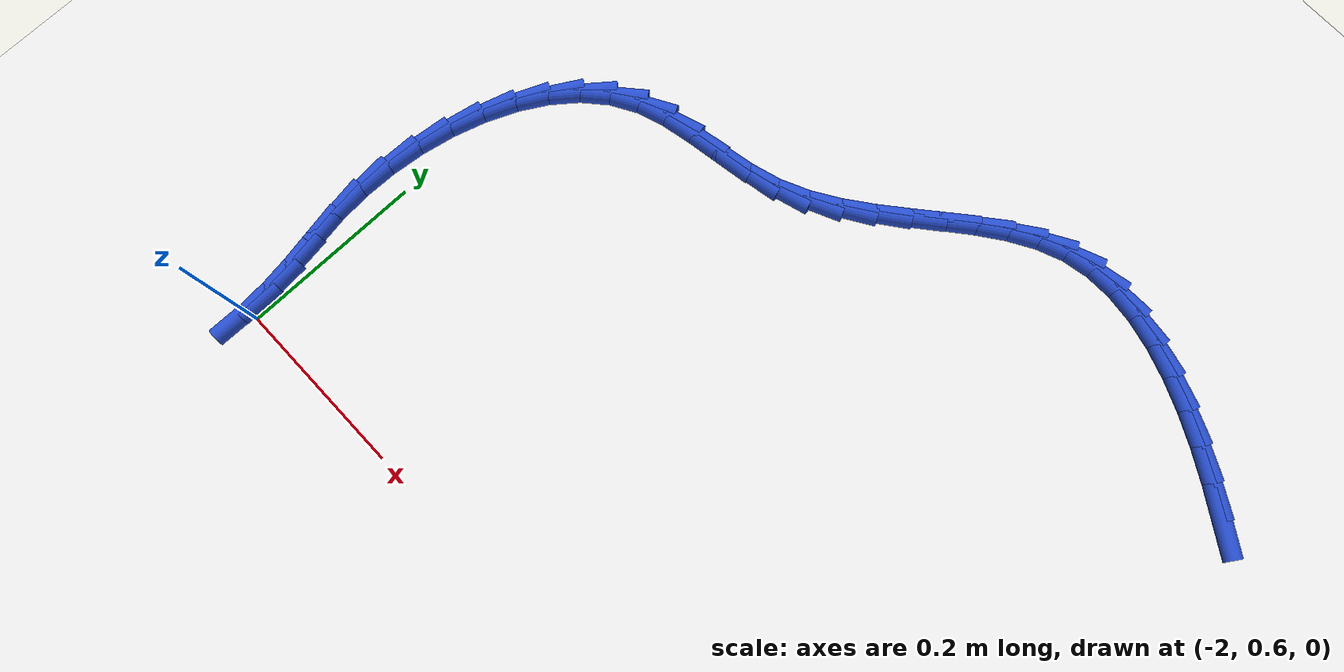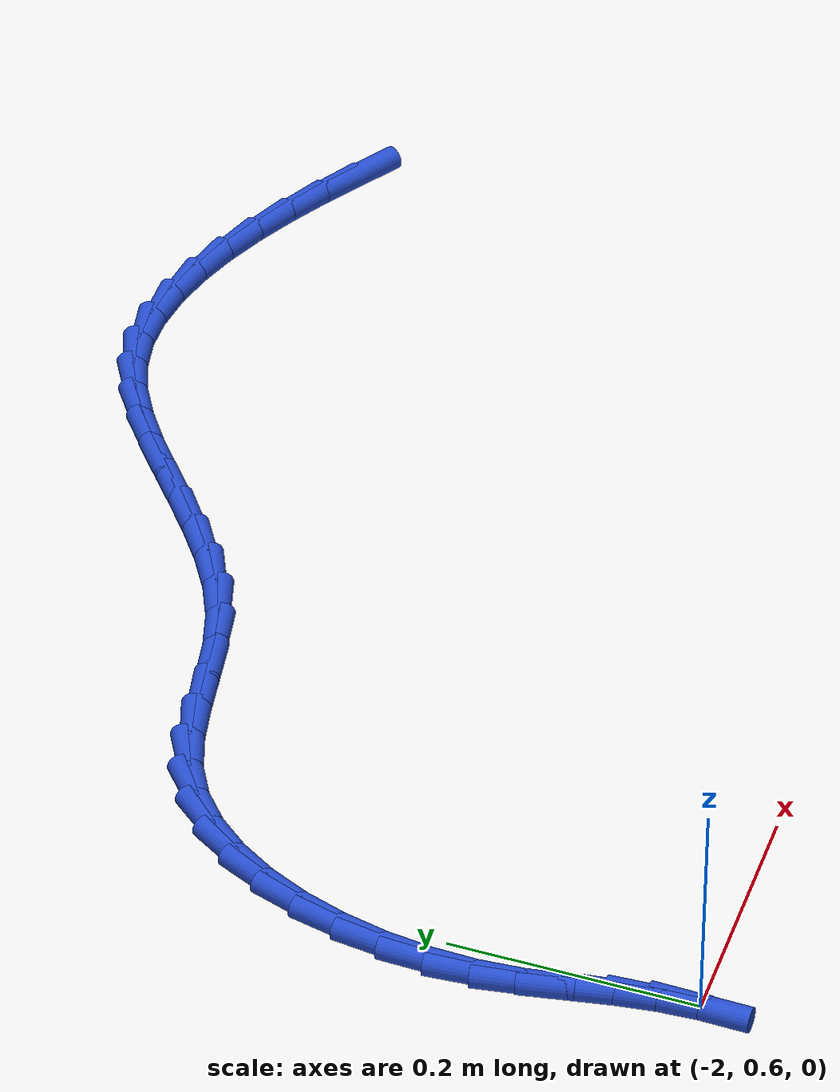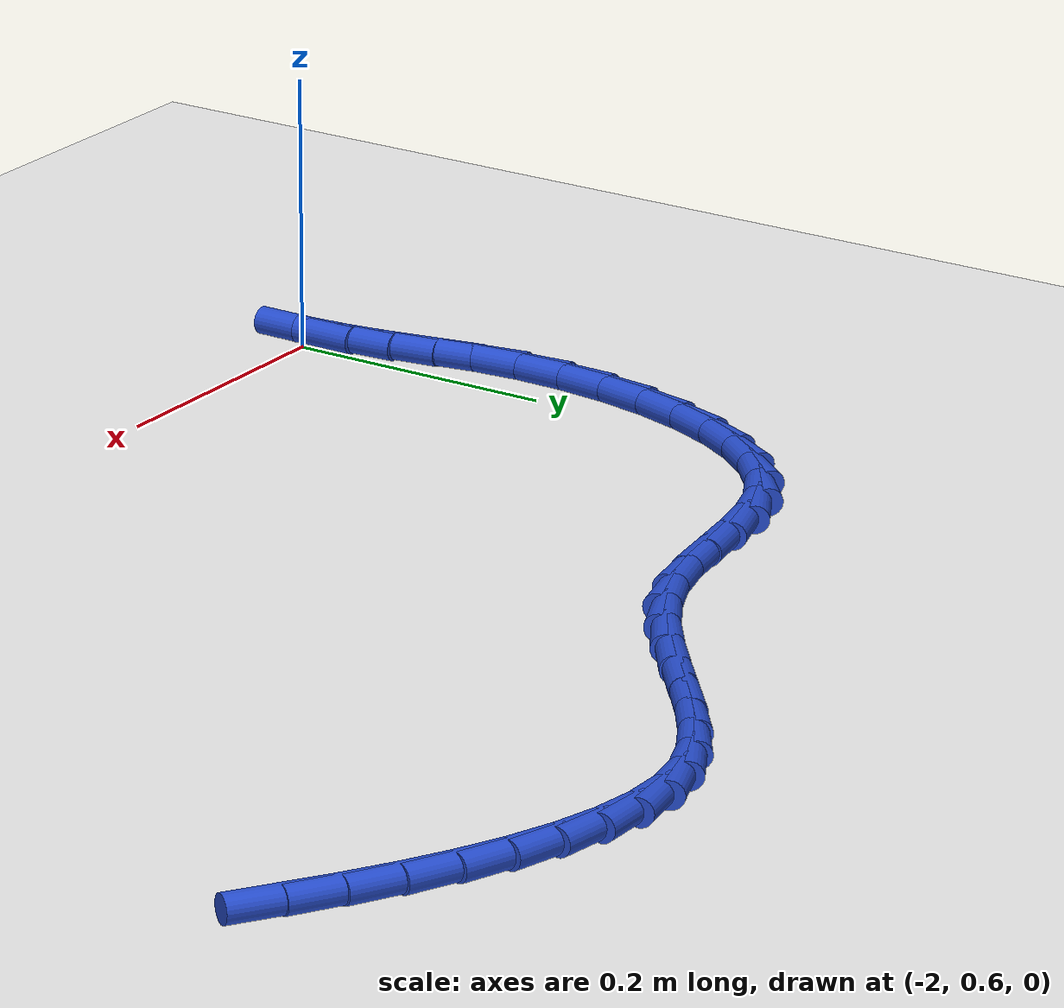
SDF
<sdf version="1.6">
 <world name="default">
  <model name="ground_plane">
   <static>1</static>
   <link name="link">
    <collision name="collision">
     <geometry><plane><normal>0 0 1</normal><size>100 100</size></plane></geometry>
     <surface><friction><ode><mu>100</mu><mu2>50</mu2></ode></friction></surface>
    </collision>
    <visual name="visual">
     <cast_shadows>0</cast_shadows>
     <geometry><plane><normal>0 0 1</normal><size>100 100</size></plane></geometry>
     <material>
      <script><uri>file://media/materials/scripts/gazebo.material</uri><name>Gazebo/WhiteGlow</name></script>
     </material>
    </visual>
   </link>
  </model>
  <model name="line">
   <link name="link_54">
    <pose>-1.176917898651941 1.1627627117914263 0.01 0 1.57 -0.5780427387369828</pose>
    <collision name="collision">
     <geometry><cylinder><radius>0.01</radius><length>0.08</length></cylinder></geometry>
    </collision>
    <visual name="visual">
     <material>
      <script><name>Gazebo/Blue</name><uri>file://media/materials/scripts/gazebo.material</uri></script>
     </material>
     <geometry><cylinder><radius>0.01</radius><length>0.08</length></cylinder></geometry>
    </visual>
   </link>
   <link name="link_55">
    <pose>-1.2086422637118477 1.1834588824106278 0.01 0 1.57 -0.5366835123935262</pose>
    <collision name="collision">
     <geometry><cylinder><radius>0.01</radius><length>0.08</length></cylinder></geometry>
    </collision>
    <visual name="visual">
     <material>
      <script><name>Gazebo/Blue</name><uri>file://media/materials/scripts/gazebo.material</uri></script>
     </material>
     <geometry><cylinder><radius>0.01</radius><length>0.08</length></cylinder></geometry>
    </visual>
   </link>
   <link name="link_56">
    <pose>-1.241278121779455 1.2028749464035091 0.01 0 1.57 -0.4856228797664288</pose>
    <collision name="collision">
     <geometry><cylinder><radius>0.01</radius><length>0.08</length></cylinder></geometry>
    </collision>
    <visual name="visual">
     <material>
      <script><name>Gazebo/Blue</name><uri>file://media/materials/scripts/gazebo.material</uri></script>
     </material>
     <geometry><cylinder><radius>0.01</radius><length>0.08</length></cylinder></geometry>
    </visual>
   </link>
   <link name="link_57">
    <pose>-1.2745295684713251 1.2204243544820943 0.01 0 1.57 -0.4225862140601892</pose>
    <collision name="collision">
     <geometry><cylinder><radius>0.01</radius><length>0.08</length></cylinder></geometry>
    </collision>
    <visual name="visual">
     <material>
      <script><name>Gazebo/Blue</name><uri>file://media/materials/scripts/gazebo.material</uri></script>
     </material>
     <geometry><cylinder><radius>0.01</radius><length>0.08</length></cylinder></geometry>
    </visual>
   </link>
   <link name="link_58">
    <pose>-1.3081006994040179 1.235520557358408 0.01 0 1.57 -0.3445612678087705</pose>
    <collision name="collision">
     <geometry><cylinder><radius>0.01</radius><length>0.08</length></cylinder></geometry>
    </collision>
    <visual name="visual">
     <material>
      <script><name>Gazebo/Blue</name><uri>file://media/materials/scripts/gazebo.material</uri></script>
     </material>
     <geometry><cylinder><radius>0.01</radius><length>0.08</length></cylinder></geometry>
    </visual>
   </link>
   <link name="link_59">
    <pose>-1.3416956101940962 1.2475770057444757 0.01 0 1.57 -0.24778551821294031</pose>
    <collision name="collision">
     <geometry><cylinder><radius>0.01</radius><length>0.08</length></cylinder></geometry>
    </collision>
    <visual name="visual">
     <material>
      <script><name>Gazebo/Blue</name><uri>file://media/materials/scripts/gazebo.material</uri></script>
     </material>
     <geometry><cylinder><radius>0.01</radius><length>0.08</length></cylinder></geometry>
    </visual>
   </link>
   <link name="link_60">
    <pose>-1.3750183964581197 1.2560071503523214 0.01 0 1.57 -0.12804908183256347</pose>
    <collision name="collision">
     <geometry><cylinder><radius>0.01</radius><length>0.08</length></cylinder></geometry>
    </collision>
    <visual name="visual">
     <material>
      <script><name>Gazebo/Blue</name><uri>file://media/materials/scripts/gazebo.material</uri></script>
     </material>
     <geometry><cylinder><radius>0.01</radius><length>0.08</length></cylinder></geometry>
    </visual>
   </link>
   <link name="link_61">
    <pose>-1.407773153812651 1.26022444189397 0.01 0 1.57 0.01825121153832464</pose>
    <collision name="collision">
     <geometry><cylinder><radius>0.01</radius><length>0.08</length></cylinder></geometry>
    </collision>
    <visual name="visual">
     <material>
      <script><name>Gazebo/Blue</name><uri>file://media/materials/scripts/gazebo.material</uri></script>
     </material>
     <geometry><cylinder><radius>0.01</radius><length>0.08</length></cylinder></geometry>
    </visual>
   </link>
   <link name="link_62">
    <pose>-1.4396639778742502 1.2596423310814466 0.01 0 1.57 0.1918146178247075</pose>
    <collision name="collision">
     <geometry><cylinder><radius>0.01</radius><length>0.08</length></cylinder></geometry>
    </collision>
    <visual name="visual">
     <material>
      <script><name>Gazebo/Blue</name><uri>file://media/materials/scripts/gazebo.material</uri></script>
     </material>
     <geometry><cylinder><radius>0.01</radius><length>0.08</length></cylinder></geometry>
    </visual>
   </link>
   <link name="link_63">
    <pose>-1.4703949768707225 1.2536743025000623 0.01 0 1.57 0.3755300517845556</pose>
    <collision name="collision">
     <geometry><cylinder><radius>0.01</radius><length>0.08</length></cylinder></geometry>
    </collision>
    <visual name="visual">
     <material>
      <script><name>Gazebo/Blue</name><uri>file://media/materials/scripts/gazebo.material</uri></script>
     </material>
     <geometry><cylinder><radius>0.01</radius><length>0.08</length></cylinder></geometry>
    </visual>
   </link>
   <link name="link_64">
    <pose>-1.4997997984988494 1.242081778474179 0.01 0 1.57 0.5203321534626906</pose>
    <collision name="collision">
     <geometry><cylinder><radius>0.01</radius><length>0.08</length></cylinder></geometry>
    </collision>
    <visual name="visual">
     <material>
      <script><name>Gazebo/Blue</name><uri>file://media/materials/scripts/gazebo.material</uri></script>
     </material>
     <geometry><cylinder><radius>0.01</radius><length>0.08</length></cylinder></geometry>
    </visual>
   </link>
   <link name="link_65">
    <pose>-1.5281606293536816 1.2258309385451978 0.01 0 1.57 0.6178428762638112</pose>
    <collision name="collision">
     <geometry><cylinder><radius>0.01</radius><length>0.08</length></cylinder></geometry>
    </collision>
    <visual name="visual">
     <material>
      <script><name>Gazebo/Blue</name><uri>file://media/materials/scripts/gazebo.material</uri></script>
     </material>
     <geometry><cylinder><radius>0.01</radius><length>0.08</length></cylinder></geometry>
    </visual>
   </link>
   <link name="link_66">
    <pose>-1.5558566707289896 1.2061485397850091 0.01 0 1.57 0.6738246059617238</pose>
    <collision name="collision">
     <geometry><cylinder><radius>0.01</radius><length>0.08</length></cylinder></geometry>
    </collision>
    <visual name="visual">
     <material>
      <script><name>Gazebo/Blue</name><uri>file://media/materials/scripts/gazebo.material</uri></script>
     </material>
     <geometry><cylinder><radius>0.01</radius><length>0.08</length></cylinder></geometry>
    </visual>
   </link>
   <link name="link_67">
    <pose>-1.5832671239185419 1.1842613392655037 0.01 0 1.57 0.6935610456259537</pose>
    <collision name="collision">
     <geometry><cylinder><radius>0.01</radius><length>0.08</length></cylinder></geometry>
    </collision>
    <visual name="visual">
     <material>
      <script><name>Gazebo/Blue</name><uri>file://media/materials/scripts/gazebo.material</uri></script>
     </material>
     <geometry><cylinder><radius>0.01</radius><length>0.08</length></cylinder></geometry>
    </visual>
   </link>
   <link name="link_68">
    <pose>-1.6107711902161093 1.1613960940585706 0.01 0 1.57 0.679842432964973</pose>
    <collision name="collision">
     <geometry><cylinder><radius>0.01</radius><length>0.08</length></cylinder></geometry>
    </collision>
    <visual name="visual">
     <material>
      <script><name>Gazebo/Blue</name><uri>file://media/materials/scripts/gazebo.material</uri></script>
     </material>
     <geometry><cylinder><radius>0.01</radius><length>0.08</length></cylinder></geometry>
    </visual>
   </link>
   <link name="link_69">
    <pose>-1.63874807091546 1.138779561236101 0.01 0 1.57 0.6327459629798103</pose>
    <collision name="collision">
     <geometry><cylinder><radius>0.01</radius><length>0.08</length></cylinder></geometry>
    </collision>
    <visual name="visual">
     <material>
      <script><name>Gazebo/Blue</name><uri>file://media/materials/scripts/gazebo.material</uri></script>
     </material>
     <geometry><cylinder><radius>0.01</radius><length>0.08</length></cylinder></geometry>
    </visual>
   </link>
   <link name="link_70">
    <pose>-1.6675769673103653 1.1176384978699843 0.01 0 1.57 0.5502133348714137</pose>
    <collision name="collision">
     <geometry><cylinder><radius>0.01</radius><length>0.08</length></cylinder></geometry>
    </collision>
    <visual name="visual">
     <material>
      <script><name>Gazebo/Blue</name><uri>file://media/materials/scripts/gazebo.material</uri></script>
     </material>
     <geometry><cylinder><radius>0.01</radius><length>0.08</length></cylinder></geometry>
    </visual>
   </link>
   <link name="link_71">
    <pose>-1.6976370806945933 1.0991996610321113 0.01 0 1.57 0.42961074005122696</pose>
    <collision name="collision">
     <geometry><cylinder><radius>0.01</radius><length>0.08</length></cylinder></geometry>
    </collision>
    <visual name="visual">
     <material>
      <script><name>Gazebo/Blue</name><uri>file://media/materials/scripts/gazebo.material</uri></script>
     </material>
     <geometry><cylinder><radius>0.01</radius><length>0.08</length></cylinder></geometry>
    </visual>
   </link>
   <link name="link_72">
    <pose>-1.7293076123619144 1.0846898077943719 0.01 0 1.57 0.28526186811522847</pose>
    <collision name="collision">
     <geometry><cylinder><radius>0.01</radius><length>0.08</length></cylinder></geometry>
    </collision>
    <visual name="visual">
     <material>
      <script><name>Gazebo/Blue</name><uri>file://media/materials/scripts/gazebo.material</uri></script>
     </material>
     <geometry><cylinder><radius>0.01</radius><length>0.08</length></cylinder></geometry>
    </visual>
   </link>
   <link name="link_73">
    <pose>-1.7627792682887082 1.0748739109733982 0.01 0 1.57 0.1901970805729761</pose>
    <collision name="collision">
     <geometry><cylinder><radius>0.01</radius><length>0.08</length></cylinder></geometry>
    </collision>
    <visual name="visual">
     <material>
      <script><name>Gazebo/Blue</name><uri>file://media/materials/scripts/gazebo.material</uri></script>
     </material>
     <geometry><cylinder><radius>0.01</radius><length>0.08</length></cylinder></geometry>
    </visual>
   </link>
   <link name="link_74">
    <pose>-1.7973077554669639 1.0682263410745696 0.01 0 1.57 0.16388613556229936</pose>
    <collision name="collision">
     <geometry><cylinder><radius>0.01</radius><length>0.08</length></cylinder></geometry>
    </collision>
    <visual name="visual">
     <material>
      <script><name>Gazebo/Blue</name><uri>file://media/materials/scripts/gazebo.material</uri></script>
     </material>
     <geometry><cylinder><radius>0.01</radius><length>0.08</length></cylinder></geometry>
    </visual>
   </link>
   <link name="link_75">
    <pose>-1.8318594109065578 1.0625125570847513 0.01 0 1.57 0.2061675123996202</pose>
    <collision name="collision">
     <geometry><cylinder><radius>0.01</radius><length>0.08</length></cylinder></geometry>
    </collision>
    <visual name="visual">
     <material>
      <script><name>Gazebo/Blue</name><uri>file://media/materials/scripts/gazebo.material</uri></script>
     </material>
     <geometry><cylinder><radius>0.01</radius><length>0.08</length></cylinder></geometry>
    </visual>
   </link>
   <link name="link_76">
    <pose>-1.8654004854854214 1.0554978069809169 0.01 0 1.57 0.32322293616692477</pose>
    <collision name="collision">
     <geometry><cylinder><radius>0.01</radius><length>0.08</length></cylinder></geometry>
    </collision>
    <visual name="visual">
     <material>
      <script><name>Gazebo/Blue</name><uri>file://media/materials/scripts/gazebo.material</uri></script>
     </material>
     <geometry><cylinder><radius>0.01</radius><length>0.08</length></cylinder></geometry>
    </visual>
   </link>
   <link name="link_77">
    <pose>-1.8968972300814855 1.0449473387400394 0.01 0 1.57 0.5149090365470634</pose>
    <collision name="collision">
     <geometry><cylinder><radius>0.01</radius><length>0.08</length></cylinder></geometry>
    </collision>
    <visual name="visual">
     <material>
      <script><name>Gazebo/Blue</name><uri>file://media/materials/scripts/gazebo.material</uri></script>
     </material>
     <geometry><cylinder><radius>0.01</radius><length>0.08</length></cylinder></geometry>
    </visual>
   </link>
   <link name="link_78">
    <pose>-1.9253820126667653 1.0288300363199665 0.01 0 1.57 0.7156356708253856</pose>
    <collision name="collision">
     <geometry><cylinder><radius>0.01</radius><length>0.08</length></cylinder></geometry>
    </collision>
    <visual name="visual">
     <material>
      <script><name>Gazebo/Blue</name><uri>file://media/materials/scripts/gazebo.material</uri></script>
     </material>
     <geometry><cylinder><radius>0.01</radius><length>0.08</length></cylinder></geometry>
    </visual>
   </link>
   <link name="link_79">
    <pose>-1.9504976976898905 1.0069950697158563 0.01 0 1.57 0.8876763355472258</pose>
    <collision name="collision">
     <geometry><cylinder><radius>0.01</radius><length>0.08</length></cylinder></geometry>
    </collision>
    <visual name="visual">
     <material>
      <script><name>Gazebo/Blue</name><uri>file://media/materials/scripts/gazebo.material</uri></script>
     </material>
     <geometry><cylinder><radius>0.01</radius><length>0.08</length></cylinder></geometry>
    </visual>
   </link>
   <link name="link_80">
    <pose>-1.9722169851101485 0.9803074790041203 0.01 0 1.57 1.032786107213225</pose>
    <collision name="collision">
     <geometry><cylinder><radius>0.01</radius><length>0.08</length></cylinder></geometry>
    </collision>
    <visual name="visual">
     <material>
      <script><name>Gazebo/Blue</name><uri>file://media/materials/scripts/gazebo.material</uri></script>
     </material>
     <geometry><cylinder><radius>0.01</radius><length>0.08</length></cylinder></geometry>
    </visual>
   </link>
   <link name="link_81">
    <pose>-1.990515798777622 0.9496422336171573 0.01 0 1.57 1.1563794117605355</pose>
    <collision name="collision">
     <geometry><cylinder><radius>0.01</radius><length>0.08</length></cylinder></geometry>
    </collision>
    <visual name="visual">
     <material>
      <script><name>Gazebo/Blue</name><uri>file://media/materials/scripts/gazebo.material</uri></script>
     </material>
     <geometry><cylinder><radius>0.01</radius><length>0.08</length></cylinder></geometry>
    </visual>
   </link>
   <link name="link_82">
    <pose>-2.0053700625423914 0.9158743029873642 0.01 0 1.57 1.2644478685045617</pose>
    <collision name="collision">
     <geometry><cylinder><radius>0.01</radius><length>0.08</length></cylinder></geometry>
    </collision>
    <visual name="visual">
     <material>
      <script><name>Gazebo/Blue</name><uri>file://media/materials/scripts/gazebo.material</uri></script>
     </material>
     <geometry><cylinder><radius>0.01</radius><length>0.08</length></cylinder></geometry>
    </visual>
   </link>
   <link name="link_83">
    <pose>-2.016755700254538 0.8798786565471379 0.01 0 1.57 1.3625280953878482</pose>
    <collision name="collision">
     <geometry><cylinder><radius>0.01</radius><length>0.08</length></cylinder></geometry>
    </collision>
    <visual name="visual">
     <material>
      <script><name>Gazebo/Blue</name><uri>file://media/materials/scripts/gazebo.material</uri></script>
     </material>
     <geometry><cylinder><radius>0.01</radius><length>0.08</length></cylinder></geometry>
    </visual>
   </link>
   <link name="link_84">
    <pose>-2.0246486357641444 0.8425302637288774 0.01 0 1.57 1.4556171184317959</pose>
    <collision name="collision">
     <geometry><cylinder><radius>0.01</radius><length>0.08</length></cylinder></geometry>
    </collision>
    <visual name="visual">
     <material>
      <script><name>Gazebo/Blue</name><uri>file://media/materials/scripts/gazebo.material</uri></script>
     </material>
     <geometry><cylinder><radius>0.01</radius><length>0.08</length></cylinder></geometry>
    </visual>
   </link>
   <link name="link_85">
    <pose>-2.029024792921291 0.8047040939649797 0.01 0 1.57 1.5484830261612146</pose>
    <collision name="collision">
     <geometry><cylinder><radius>0.01</radius><length>0.08</length></cylinder></geometry>
    </collision>
    <visual name="visual">
     <material>
      <script><name>Gazebo/Blue</name><uri>file://media/materials/scripts/gazebo.material</uri></script>
     </material>
     <geometry><cylinder><radius>0.01</radius><length>0.08</length></cylinder></geometry>
    </visual>
   </link>
   <link name="link_86">
    <pose>-2.0298600955760597 0.7672751166878428 0.01 0 1.57 -1.4956176678806576</pose>
    <collision name="collision">
     <geometry><cylinder><radius>0.01</radius><length>0.08</length></cylinder></geometry>
    </collision>
    <visual name="visual">
     <material>
      <script><name>Gazebo/Blue</name><uri>file://media/materials/scripts/gazebo.material</uri></script>
     </material>
     <geometry><cylinder><radius>0.01</radius><length>0.08</length></cylinder></geometry>
    </visual>
   </link>
   <link name="link_87">
    <pose>-2.027136459932309 0.7311145549978382 0.01 0 1.57 -1.4110378335046727</pose>
    <collision name="collision">
     <geometry><cylinder><radius>0.01</radius><length>0.08</length></cylinder></geometry>
    </collision>
    <visual name="visual">
     <material>
      <script><name>Gazebo/Blue</name><uri>file://media/materials/scripts/gazebo.material</uri></script>
     </material>
     <geometry><cylinder><radius>0.01</radius><length>0.08</length></cylinder></geometry>
    </visual>
   </link>
   <link name="link_88">
    <pose>-2.0215796759235127 0.6966285730086275 0.01 0 1.57 -1.3865309795007204</pose>
    <collision name="collision">
     <geometry><cylinder><radius>0.01</radius><length>0.08</length></cylinder></geometry>
    </collision>
    <visual name="visual">
     <material>
      <script><name>Gazebo/Blue</name><uri>file://media/materials/scripts/gazebo.material</uri></script>
     </material>
     <geometry><cylinder><radius>0.01</radius><length>0.08</length></cylinder></geometry>
    </visual>
   </link>
   <link name="link_89">
    <pose>-2.015370469970226 0.6633137298008117 0.01 0 1.57 -1.431817732250833</pose>
    <collision name="collision">
     <geometry><cylinder><radius>0.01</radius><length>0.08</length></cylinder></geometry>
    </collision>
    <visual name="visual">
     <material>
      <script><name>Gazebo/Blue</name><uri>file://media/materials/scripts/gazebo.material</uri></script>
     </material>
     <geometry><cylinder><radius>0.01</radius><length>0.08</length></cylinder></geometry>
    </visual>
   </link>
   <link name="link_90">
    <pose>-2.0107911194604418 0.6305761055011112 0.01 0 1.57 -1.5109153659995214</pose>
    <collision name="collision">
     <geometry><cylinder><radius>0.01</radius><length>0.08</length></cylinder></geometry>
    </collision>
    <visual name="visual">
     <material>
      <script><name>Gazebo/Blue</name><uri>file://media/materials/scripts/gazebo.material</uri></script>
     </material>
     <geometry><cylinder><radius>0.01</radius><length>0.08</length></cylinder></geometry>
    </visual>
   </link>
   <link name="link_91">
    <pose>-2.008844487531603 0.5981066085501516 0.01 0 1.57 1.5540434935640173</pose>
    <collision name="collision">
     <geometry><cylinder><radius>0.01</radius><length>0.08</length></cylinder></geometry>
    </collision>
    <visual name="visual">
     <material>
      <script><name>Gazebo/Blue</name><uri>file://media/materials/scripts/gazebo.material</uri></script>
     </material>
     <geometry><cylinder><radius>0.01</radius><length>0.08</length></cylinder></geometry>
    </visual>
   </link>
  </model>
 </world>
</sdf>
